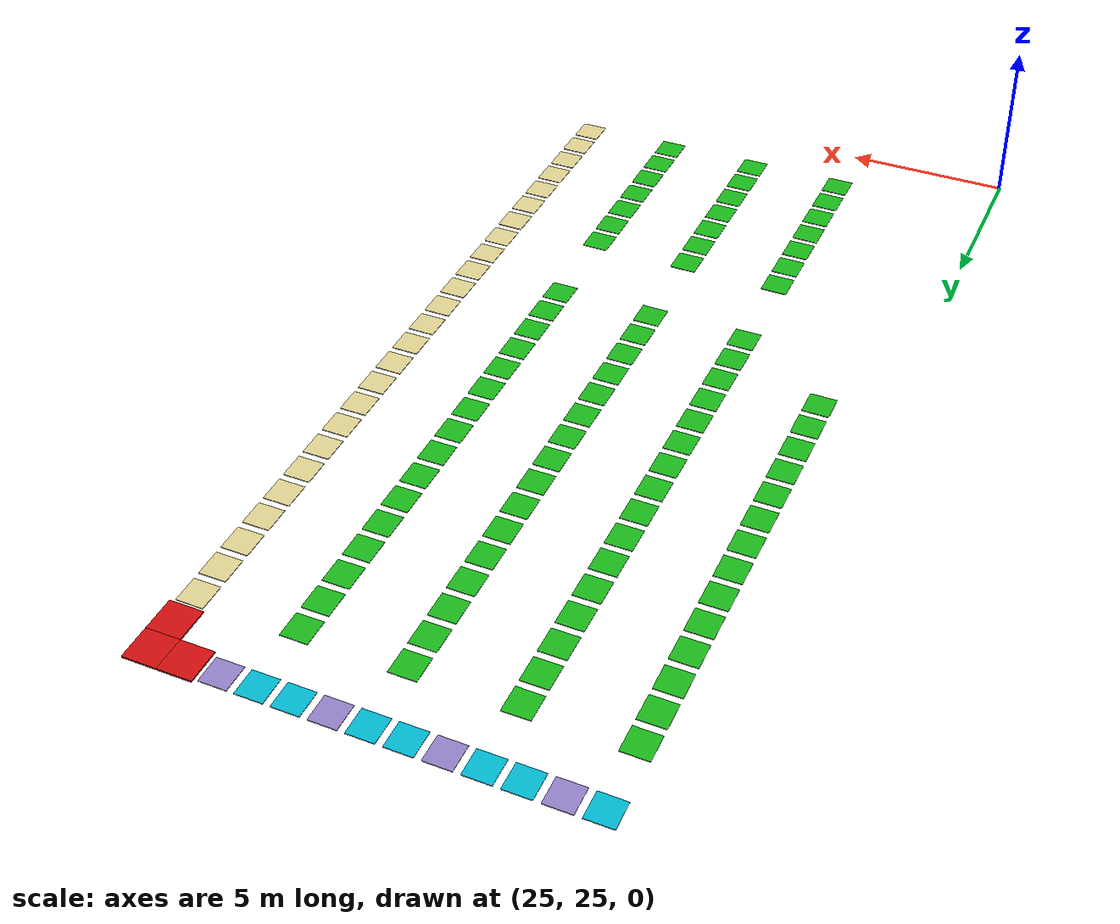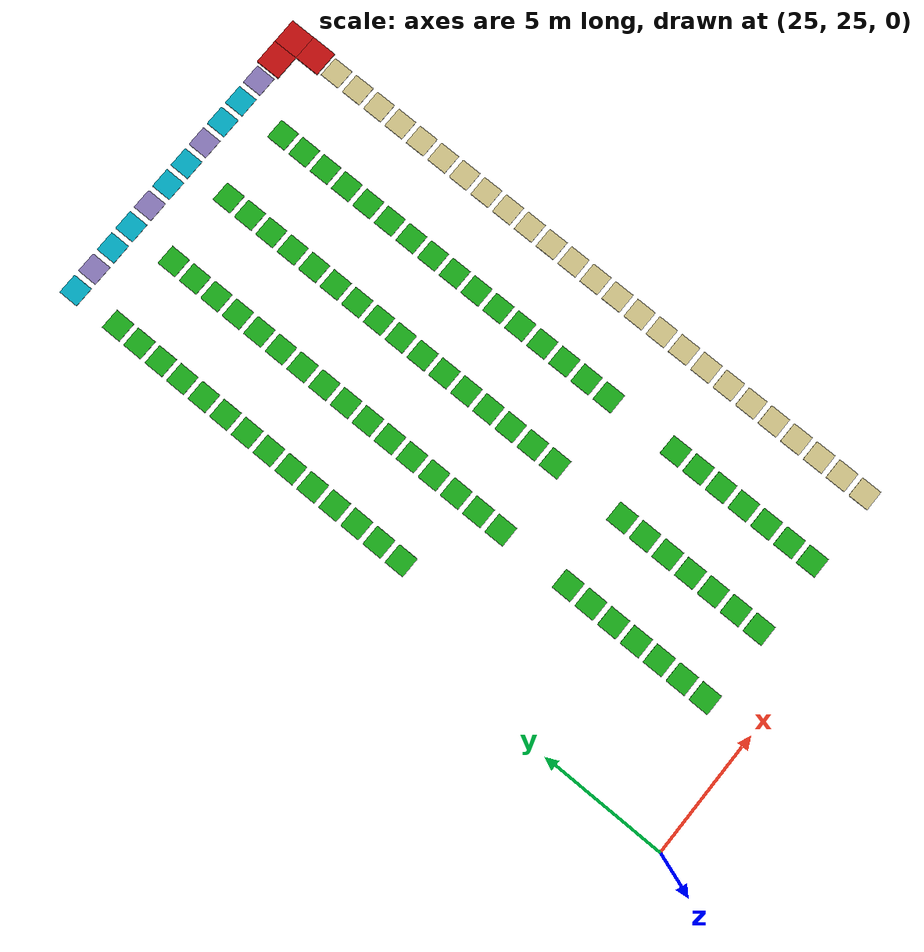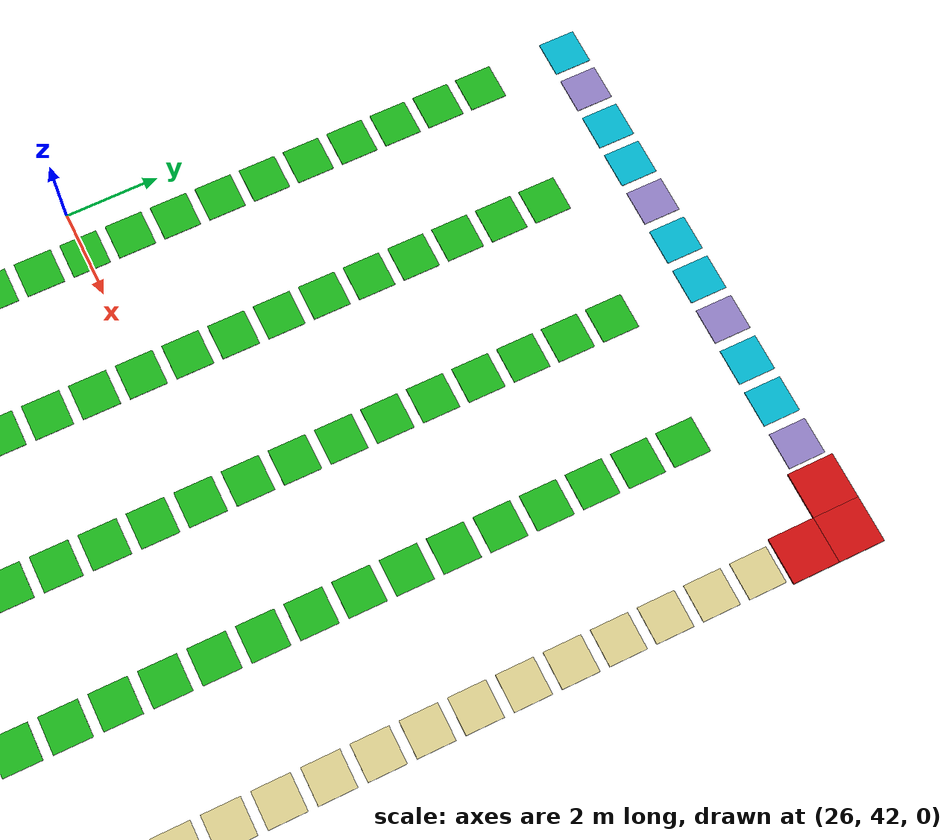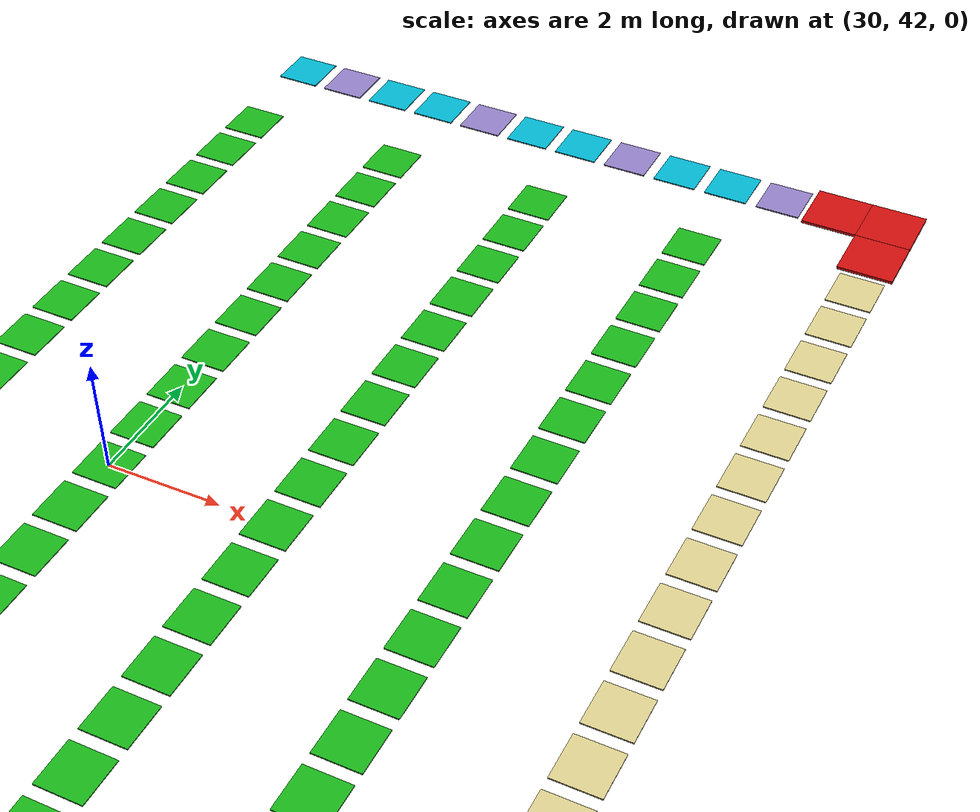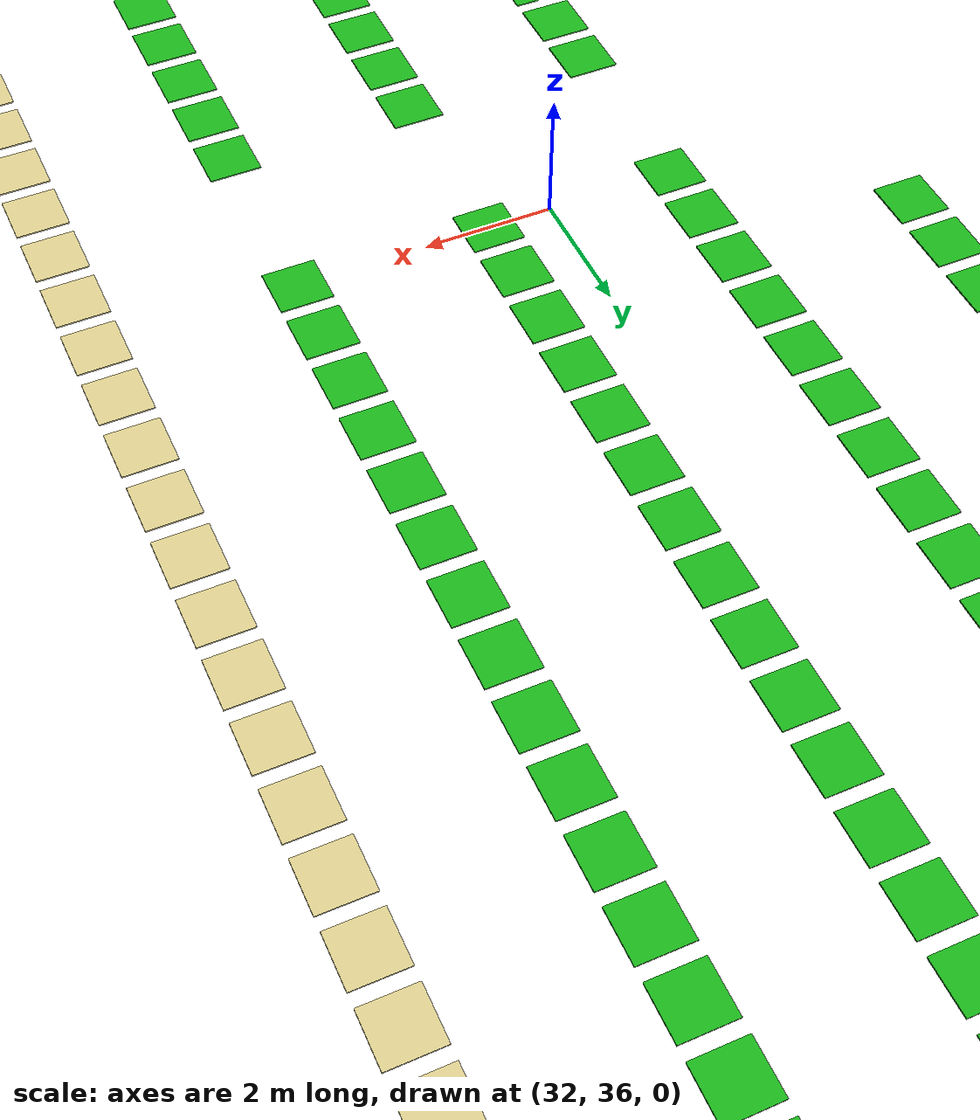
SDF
<sdf version="1.10">
 <world name="warehouse">
  <model name="blocked_0007">
   <static>true</static>
   <pose>38.0
        53.0
        0.045
        0 0 0</pose>
   <link name="link">
    <visual name="visual">
     <geometry><box><size>1.0
                1.0
                0.05</size></box></geometry>
     <material><ambient>0.8 0.05 0.05 1</ambient><diffuse>0.8 0.05 0.05 1</diffuse></material>
    </visual>
   </link>
  </model>
  <model name="blocked_0010">
   <static>true</static>
   <pose>39.0
        52.0
        0.045
        0 0 0</pose>
   <link name="link">
    <visual name="visual">
     <geometry><box><size>1.0
                1.0
                0.05</size></box></geometry>
     <material><ambient>0.8 0.05 0.05 1</ambient><diffuse>0.8 0.05 0.05 1</diffuse></material>
    </visual>
   </link>
  </model>
  <model name="blocked_0011">
   <static>true</static>
   <pose>39.0
        53.0
        0.045
        0 0 0</pose>
   <link name="link">
    <visual name="visual">
     <geometry><box><size>1.0
                1.0
                0.05</size></box></geometry>
     <material><ambient>0.8 0.05 0.05 1</ambient><diffuse>0.8 0.05 0.05 1</diffuse></material>
    </visual>
   </link>
  </model>
  <model name="charging_018">
   <static>true</static>
   <pose>27.0
        53.0
        0.02
        0 0 0</pose>
   <link name="link">
    <visual name="visual">
     <geometry><box><size>0.8
                0.8
                0.02</size></box></geometry>
     <material><ambient>0.00 0.70 0.80 1</ambient><diffuse>0.00 0.70 0.80 1</diffuse></material>
    </visual>
   </link>
  </model>
  <model name="charge_queue_009">
   <static>true</static>
   <pose>28.0
        53.0
        0.02
        0 0 0</pose>
   <link name="link">
    <visual name="visual">
     <geometry><box><size>0.8
                0.8
                0.02</size></box></geometry>
     <material><ambient>0.56 0.49 0.76 1</ambient><diffuse>0.56 0.49 0.76 1</diffuse></material>
    </visual>
   </link>
  </model>
  <model name="charging_019">
   <static>true</static>
   <pose>29.0
        53.0
        0.02
        0 0 0</pose>
   <link name="link">
    <visual name="visual">
     <geometry><box><size>0.8
                0.8
                0.02</size></box></geometry>
     <material><ambient>0.00 0.70 0.80 1</ambient><diffuse>0.00 0.70 0.80 1</diffuse></material>
    </visual>
   </link>
  </model>
  <model name="charging_020">
   <static>true</static>
   <pose>30.0
        53.0
        0.02
        0 0 0</pose>
   <link name="link">
    <visual name="visual">
     <geometry><box><size>0.8
                0.8
                0.02</size></box></geometry>
     <material><ambient>0.00 0.70 0.80 1</ambient><diffuse>0.00 0.70 0.80 1</diffuse></material>
    </visual>
   </link>
  </model>
  <model name="charge_queue_010">
   <static>true</static>
   <pose>31.0
        53.0
        0.02
        0 0 0</pose>
   <link name="link">
    <visual name="visual">
     <geometry><box><size>0.8
                0.8
                0.02</size></box></geometry>
     <material><ambient>0.56 0.49 0.76 1</ambient><diffuse>0.56 0.49 0.76 1</diffuse></material>
    </visual>
   </link>
  </model>
  <model name="charging_021">
   <static>true</static>
   <pose>32.0
        53.0
        0.02
        0 0 0</pose>
   <link name="link">
    <visual name="visual">
     <geometry><box><size>0.8
                0.8
                0.02</size></box></geometry>
     <material><ambient>0.00 0.70 0.80 1</ambient><diffuse>0.00 0.70 0.80 1</diffuse></material>
    </visual>
   </link>
  </model>
  <model name="charging_022">
   <static>true</static>
   <pose>33.0
        53.0
        0.02
        0 0 0</pose>
   <link name="link">
    <visual name="visual">
     <geometry><box><size>0.8
                0.8
                0.02</size></box></geometry>
     <material><ambient>0.00 0.70 0.80 1</ambient><diffuse>0.00 0.70 0.80 1</diffuse></material>
    </visual>
   </link>
  </model>
  <model name="charge_queue_011">
   <static>true</static>
   <pose>34.0
        53.0
        0.02
        0 0 0</pose>
   <link name="link">
    <visual name="visual">
     <geometry><box><size>0.8
                0.8
                0.02</size></box></geometry>
     <material><ambient>0.56 0.49 0.76 1</ambient><diffuse>0.56 0.49 0.76 1</diffuse></material>
    </visual>
   </link>
  </model>
  <model name="charging_023">
   <static>true</static>
   <pose>35.0
        53.0
        0.02
        0 0 0</pose>
   <link name="link">
    <visual name="visual">
     <geometry><box><size>0.8
                0.8
                0.02</size></box></geometry>
     <material><ambient>0.00 0.70 0.80 1</ambient><diffuse>0.00 0.70 0.80 1</diffuse></material>
    </visual>
   </link>
  </model>
  <model name="charging_024">
   <static>true</static>
   <pose>36.0
        53.0
        0.02
        0 0 0</pose>
   <link name="link">
    <visual name="visual">
     <geometry><box><size>0.8
                0.8
                0.02</size></box></geometry>
     <material><ambient>0.00 0.70 0.80 1</ambient><diffuse>0.00 0.70 0.80 1</diffuse></material>
    </visual>
   </link>
  </model>
  <model name="charge_queue_012">
   <static>true</static>
   <pose>37.0
        53.0
        0.02
        0 0 0</pose>
   <link name="link">
    <visual name="visual">
     <geometry><box><size>0.8
                0.8
                0.02</size></box></geometry>
     <material><ambient>0.56 0.49 0.76 1</ambient><diffuse>0.56 0.49 0.76 1</diffuse></material>
    </visual>
   </link>
  </model>
  <model name="shelf_009">
   <static>true</static>
   <pose>27.0
        51.0
        0.02
        0 0 0</pose>
   <link name="link">
    <visual name="visual">
     <geometry><box><size>0.8
                0.8
                0.02</size></box></geometry>
     <material><ambient>0.10 0.70 0.10 1</ambient><diffuse>0.10 0.70 0.10 1</diffuse></material>
    </visual>
   </link>
  </model>
  <model name="shelf_010">
   <static>true</static>
   <pose>30.0
        51.0
        0.02
        0 0 0</pose>
   <link name="link">
    <visual name="visual">
     <geometry><box><size>0.8
                0.8
                0.02</size></box></geometry>
     <material><ambient>0.10 0.70 0.10 1</ambient><diffuse>0.10 0.70 0.10 1</diffuse></material>
    </visual>
   </link>
  </model>
  <model name="shelf_011">
   <static>true</static>
   <pose>33.0
        51.0
        0.02
        0 0 0</pose>
   <link name="link">
    <visual name="visual">
     <geometry><box><size>0.8
                0.8
                0.02</size></box></geometry>
     <material><ambient>0.10 0.70 0.10 1</ambient><diffuse>0.10 0.70 0.10 1</diffuse></material>
    </visual>
   </link>
  </model>
  <model name="shelf_012">
   <static>true</static>
   <pose>36.0
        51.0
        0.02
        0 0 0</pose>
   <link name="link">
    <visual name="visual">
     <geometry><box><size>0.8
                0.8
                0.02</size></box></geometry>
     <material><ambient>0.10 0.70 0.10 1</ambient><diffuse>0.10 0.70 0.10 1</diffuse></material>
    </visual>
   </link>
  </model>
  <model name="staging_002">
   <static>true</static>
   <pose>39.0
        51.0
        0.02
        0 0 0</pose>
   <link name="link">
    <visual name="visual">
     <geometry><box><size>0.8
                0.8
                0.02</size></box></geometry>
     <material><ambient>0.85 0.80 0.55 1</ambient><diffuse>0.85 0.80 0.55 1</diffuse></material>
    </visual>
   </link>
  </model>
  <model name="shelf_021">
   <static>true</static>
   <pose>27.0
        50.0
        0.02
        0 0 0</pose>
   <link name="link">
    <visual name="visual">
     <geometry><box><size>0.8
                0.8
                0.02</size></box></geometry>
     <material><ambient>0.10 0.70 0.10 1</ambient><diffuse>0.10 0.70 0.10 1</diffuse></material>
    </visual>
   </link>
  </model>
  <model name="shelf_022">
   <static>true</static>
   <pose>30.0
        50.0
        0.02
        0 0 0</pose>
   <link name="link">
    <visual name="visual">
     <geometry><box><size>0.8
                0.8
                0.02</size></box></geometry>
     <material><ambient>0.10 0.70 0.10 1</ambient><diffuse>0.10 0.70 0.10 1</diffuse></material>
    </visual>
   </link>
  </model>
  <model name="shelf_023">
   <static>true</static>
   <pose>33.0
        50.0
        0.02
        0 0 0</pose>
   <link name="link">
    <visual name="visual">
     <geometry><box><size>0.8
                0.8
                0.02</size></box></geometry>
     <material><ambient>0.10 0.70 0.10 1</ambient><diffuse>0.10 0.70 0.10 1</diffuse></material>
    </visual>
   </link>
  </model>
  <model name="shelf_024">
   <static>true</static>
   <pose>36.0
        50.0
        0.02
        0 0 0</pose>
   <link name="link">
    <visual name="visual">
     <geometry><box><size>0.8
                0.8
                0.02</size></box></geometry>
     <material><ambient>0.10 0.70 0.10 1</ambient><diffuse>0.10 0.70 0.10 1</diffuse></material>
    </visual>
   </link>
  </model>
  <model name="staging_004">
   <static>true</static>
   <pose>39.0
        50.0
        0.02
        0 0 0</pose>
   <link name="link">
    <visual name="visual">
     <geometry><box><size>0.8
                0.8
                0.02</size></box></geometry>
     <material><ambient>0.85 0.80 0.55 1</ambient><diffuse>0.85 0.80 0.55 1</diffuse></material>
    </visual>
   </link>
  </model>
  <model name="shelf_033">
   <static>true</static>
   <pose>27.0
        49.0
        0.02
        0 0 0</pose>
   <link name="link">
    <visual name="visual">
     <geometry><box><size>0.8
                0.8
                0.02</size></box></geometry>
     <material><ambient>0.10 0.70 0.10 1</ambient><diffuse>0.10 0.70 0.10 1</diffuse></material>
    </visual>
   </link>
  </model>
  <model name="shelf_034">
   <static>true</static>
   <pose>30.0
        49.0
        0.02
        0 0 0</pose>
   <link name="link">
    <visual name="visual">
     <geometry><box><size>0.8
                0.8
                0.02</size></box></geometry>
     <material><ambient>0.10 0.70 0.10 1</ambient><diffuse>0.10 0.70 0.10 1</diffuse></material>
    </visual>
   </link>
  </model>
  <model name="shelf_035">
   <static>true</static>
   <pose>33.0
        49.0
        0.02
        0 0 0</pose>
   <link name="link">
    <visual name="visual">
     <geometry><box><size>0.8
                0.8
                0.02</size></box></geometry>
     <material><ambient>0.10 0.70 0.10 1</ambient><diffuse>0.10 0.70 0.10 1</diffuse></material>
    </visual>
   </link>
  </model>
  <model name="shelf_036">
   <static>true</static>
   <pose>36.0
        49.0
        0.02
        0 0 0</pose>
   <link name="link">
    <visual name="visual">
     <geometry><box><size>0.8
                0.8
                0.02</size></box></geometry>
     <material><ambient>0.10 0.70 0.10 1</ambient><diffuse>0.10 0.70 0.10 1</diffuse></material>
    </visual>
   </link>
  </model>
  <model name="staging_006">
   <static>true</static>
   <pose>39.0
        49.0
        0.02
        0 0 0</pose>
   <link name="link">
    <visual name="visual">
     <geometry><box><size>0.8
                0.8
                0.02</size></box></geometry>
     <material><ambient>0.85 0.80 0.55 1</ambient><diffuse>0.85 0.80 0.55 1</diffuse></material>
    </visual>
   </link>
  </model>
  <model name="shelf_045">
   <static>true</static>
   <pose>27.0
        48.0
        0.02
        0 0 0</pose>
   <link name="link">
    <visual name="visual">
     <geometry><box><size>0.8
                0.8
                0.02</size></box></geometry>
     <material><ambient>0.10 0.70 0.10 1</ambient><diffuse>0.10 0.70 0.10 1</diffuse></material>
    </visual>
   </link>
  </model>
  <model name="shelf_046">
   <static>true</static>
   <pose>30.0
        48.0
        0.02
        0 0 0</pose>
   <link name="link">
    <visual name="visual">
     <geometry><box><size>0.8
                0.8
                0.02</size></box></geometry>
     <material><ambient>0.10 0.70 0.10 1</ambient><diffuse>0.10 0.70 0.10 1</diffuse></material>
    </visual>
   </link>
  </model>
  <model name="shelf_047">
   <static>true</static>
   <pose>33.0
        48.0
        0.02
        0 0 0</pose>
   <link name="link">
    <visual name="visual">
     <geometry><box><size>0.8
                0.8
                0.02</size></box></geometry>
     <material><ambient>0.10 0.70 0.10 1</ambient><diffuse>0.10 0.70 0.10 1</diffuse></material>
    </visual>
   </link>
  </model>
  <model name="shelf_048">
   <static>true</static>
   <pose>36.0
        48.0
        0.02
        0 0 0</pose>
   <link name="link">
    <visual name="visual">
     <geometry><box><size>0.8
                0.8
                0.02</size></box></geometry>
     <material><ambient>0.10 0.70 0.10 1</ambient><diffuse>0.10 0.70 0.10 1</diffuse></material>
    </visual>
   </link>
  </model>
  <model name="staging_008">
   <static>true</static>
   <pose>39.0
        48.0
        0.02
        0 0 0</pose>
   <link name="link">
    <visual name="visual">
     <geometry><box><size>0.8
                0.8
                0.02</size></box></geometry>
     <material><ambient>0.85 0.80 0.55 1</ambient><diffuse>0.85 0.80 0.55 1</diffuse></material>
    </visual>
   </link>
  </model>
  <model name="shelf_057">
   <static>true</static>
   <pose>27.0
        47.0
        0.02
        0 0 0</pose>
   <link name="link">
    <visual name="visual">
     <geometry><box><size>0.8
                0.8
                0.02</size></box></geometry>
     <material><ambient>0.10 0.70 0.10 1</ambient><diffuse>0.10 0.70 0.10 1</diffuse></material>
    </visual>
   </link>
  </model>
  <model name="shelf_058">
   <static>true</static>
   <pose>30.0
        47.0
        0.02
        0 0 0</pose>
   <link name="link">
    <visual name="visual">
     <geometry><box><size>0.8
                0.8
                0.02</size></box></geometry>
     <material><ambient>0.10 0.70 0.10 1</ambient><diffuse>0.10 0.70 0.10 1</diffuse></material>
    </visual>
   </link>
  </model>
  <model name="shelf_059">
   <static>true</static>
   <pose>33.0
        47.0
        0.02
        0 0 0</pose>
   <link name="link">
    <visual name="visual">
     <geometry><box><size>0.8
                0.8
                0.02</size></box></geometry>
     <material><ambient>0.10 0.70 0.10 1</ambient><diffuse>0.10 0.70 0.10 1</diffuse></material>
    </visual>
   </link>
  </model>
  <model name="shelf_060">
   <static>true</static>
   <pose>36.0
        47.0
        0.02
        0 0 0</pose>
   <link name="link">
    <visual name="visual">
     <geometry><box><size>0.8
                0.8
                0.02</size></box></geometry>
     <material><ambient>0.10 0.70 0.10 1</ambient><diffuse>0.10 0.70 0.10 1</diffuse></material>
    </visual>
   </link>
  </model>
  <model name="staging_010">
   <static>true</static>
   <pose>39.0
        47.0
        0.02
        0 0 0</pose>
   <link name="link">
    <visual name="visual">
     <geometry><box><size>0.8
                0.8
                0.02</size></box></geometry>
     <material><ambient>0.85 0.80 0.55 1</ambient><diffuse>0.85 0.80 0.55 1</diffuse></material>
    </visual>
   </link>
  </model>
  <model name="shelf_069">
   <static>true</static>
   <pose>27.0
        46.0
        0.02
        0 0 0</pose>
   <link name="link">
    <visual name="visual">
     <geometry><box><size>0.8
                0.8
                0.02</size></box></geometry>
     <material><ambient>0.10 0.70 0.10 1</ambient><diffuse>0.10 0.70 0.10 1</diffuse></material>
    </visual>
   </link>
  </model>
  <model name="shelf_070">
   <static>true</static>
   <pose>30.0
        46.0
        0.02
        0 0 0</pose>
   <link name="link">
    <visual name="visual">
     <geometry><box><size>0.8
                0.8
                0.02</size></box></geometry>
     <material><ambient>0.10 0.70 0.10 1</ambient><diffuse>0.10 0.70 0.10 1</diffuse></material>
    </visual>
   </link>
  </model>
  <model name="shelf_071">
   <static>true</static>
   <pose>33.0
        46.0
        0.02
        0 0 0</pose>
   <link name="link">
    <visual name="visual">
     <geometry><box><size>0.8
                0.8
                0.02</size></box></geometry>
     <material><ambient>0.10 0.70 0.10 1</ambient><diffuse>0.10 0.70 0.10 1</diffuse></material>
    </visual>
   </link>
  </model>
  <model name="shelf_072">
   <static>true</static>
   <pose>36.0
        46.0
        0.02
        0 0 0</pose>
   <link name="link">
    <visual name="visual">
     <geometry><box><size>0.8
                0.8
                0.02</size></box></geometry>
     <material><ambient>0.10 0.70 0.10 1</ambient><diffuse>0.10 0.70 0.10 1</diffuse></material>
    </visual>
   </link>
  </model>
  <model name="staging_012">
   <static>true</static>
   <pose>39.0
        46.0
        0.02
        0 0 0</pose>
   <link name="link">
    <visual name="visual">
     <geometry><box><size>0.8
                0.8
                0.02</size></box></geometry>
     <material><ambient>0.85 0.80 0.55 1</ambient><diffuse>0.85 0.80 0.55 1</diffuse></material>
    </visual>
   </link>
  </model>
  <model name="shelf_081">
   <static>true</static>
   <pose>27.0
        45.0
        0.02
        0 0 0</pose>
   <link name="link">
    <visual name="visual">
     <geometry><box><size>0.8
                0.8
                0.02</size></box></geometry>
     <material><ambient>0.10 0.70 0.10 1</ambient><diffuse>0.10 0.70 0.10 1</diffuse></material>
    </visual>
   </link>
  </model>
  <model name="shelf_082">
   <static>true</static>
   <pose>30.0
        45.0
        0.02
        0 0 0</pose>
   <link name="link">
    <visual name="visual">
     <geometry><box><size>0.8
                0.8
                0.02</size></box></geometry>
     <material><ambient>0.10 0.70 0.10 1</ambient><diffuse>0.10 0.70 0.10 1</diffuse></material>
    </visual>
   </link>
  </model>
  <model name="shelf_083">
   <static>true</static>
   <pose>33.0
        45.0
        0.02
        0 0 0</pose>
   <link name="link">
    <visual name="visual">
     <geometry><box><size>0.8
                0.8
                0.02</size></box></geometry>
     <material><ambient>0.10 0.70 0.10 1</ambient><diffuse>0.10 0.70 0.10 1</diffuse></material>
    </visual>
   </link>
  </model>
  <model name="shelf_084">
   <static>true</static>
   <pose>36.0
        45.0
        0.02
        0 0 0</pose>
   <link name="link">
    <visual name="visual">
     <geometry><box><size>0.8
                0.8
                0.02</size></box></geometry>
     <material><ambient>0.10 0.70 0.10 1</ambient><diffuse>0.10 0.70 0.10 1</diffuse></material>
    </visual>
   </link>
  </model>
  <model name="staging_014">
   <static>true</static>
   <pose>39.0
        45.0
        0.02
        0 0 0</pose>
   <link name="link">
    <visual name="visual">
     <geometry><box><size>0.8
                0.8
                0.02</size></box></geometry>
     <material><ambient>0.85 0.80 0.55 1</ambient><diffuse>0.85 0.80 0.55 1</diffuse></material>
    </visual>
   </link>
  </model>
  <model name="shelf_093">
   <static>true</static>
   <pose>27.0
        44.0
        0.02
        0 0 0</pose>
   <link name="link">
    <visual name="visual">
     <geometry><box><size>0.8
                0.8
                0.02</size></box></geometry>
     <material><ambient>0.10 0.70 0.10 1</ambient><diffuse>0.10 0.70 0.10 1</diffuse></material>
    </visual>
   </link>
  </model>
  <model name="shelf_094">
   <static>true</static>
   <pose>30.0
        44.0
        0.02
        0 0 0</pose>
   <link name="link">
    <visual name="visual">
     <geometry><box><size>0.8
                0.8
                0.02</size></box></geometry>
     <material><ambient>0.10 0.70 0.10 1</ambient><diffuse>0.10 0.70 0.10 1</diffuse></material>
    </visual>
   </link>
  </model>
  <model name="shelf_095">
   <static>true</static>
   <pose>33.0
        44.0
        0.02
        0 0 0</pose>
   <link name="link">
    <visual name="visual">
     <geometry><box><size>0.8
                0.8
                0.02</size></box></geometry>
     <material><ambient>0.10 0.70 0.10 1</ambient><diffuse>0.10 0.70 0.10 1</diffuse></material>
    </visual>
   </link>
  </model>
  <model name="shelf_096">
   <static>true</static>
   <pose>36.0
        44.0
        0.02
        0 0 0</pose>
   <link name="link">
    <visual name="visual">
     <geometry><box><size>0.8
                0.8
                0.02</size></box></geometry>
     <material><ambient>0.10 0.70 0.10 1</ambient><diffuse>0.10 0.70 0.10 1</diffuse></material>
    </visual>
   </link>
  </model>
  <model name="staging_016">
   <static>true</static>
   <pose>39.0
        44.0
        0.02
        0 0 0</pose>
   <link name="link">
    <visual name="visual">
     <geometry><box><size>0.8
                0.8
                0.02</size></box></geometry>
     <material><ambient>0.85 0.80 0.55 1</ambient><diffuse>0.85 0.80 0.55 1</diffuse></material>
    </visual>
   </link>
  </model>
  <model name="shelf_105">
   <static>true</static>
   <pose>27.0
        43.0
        0.02
        0 0 0</pose>
   <link name="link">
    <visual name="visual">
     <geometry><box><size>0.8
                0.8
                0.02</size></box></geometry>
     <material><ambient>0.10 0.70 0.10 1</ambient><diffuse>0.10 0.70 0.10 1</diffuse></material>
    </visual>
   </link>
  </model>
  <model name="shelf_106">
   <static>true</static>
   <pose>30.0
        43.0
        0.02
        0 0 0</pose>
   <link name="link">
    <visual name="visual">
     <geometry><box><size>0.8
                0.8
                0.02</size></box></geometry>
     <material><ambient>0.10 0.70 0.10 1</ambient><diffuse>0.10 0.70 0.10 1</diffuse></material>
    </visual>
   </link>
  </model>
  <model name="shelf_107">
   <static>true</static>
   <pose>33.0
        43.0
        0.02
        0 0 0</pose>
   <link name="link">
    <visual name="visual">
     <geometry><box><size>0.8
                0.8
                0.02</size></box></geometry>
     <material><ambient>0.10 0.70 0.10 1</ambient><diffuse>0.10 0.70 0.10 1</diffuse></material>
    </visual>
   </link>
  </model>
  <model name="shelf_108">
   <static>true</static>
   <pose>36.0
        43.0
        0.02
        0 0 0</pose>
   <link name="link">
    <visual name="visual">
     <geometry><box><size>0.8
                0.8
                0.02</size></box></geometry>
     <material><ambient>0.10 0.70 0.10 1</ambient><diffuse>0.10 0.70 0.10 1</diffuse></material>
    </visual>
   </link>
  </model>
  <model name="staging_018">
   <static>true</static>
   <pose>39.0
        43.0
        0.02
        0 0 0</pose>
   <link name="link">
    <visual name="visual">
     <geometry><box><size>0.8
                0.8
                0.02</size></box></geometry>
     <material><ambient>0.85 0.80 0.55 1</ambient><diffuse>0.85 0.80 0.55 1</diffuse></material>
    </visual>
   </link>
  </model>
  <model name="shelf_117">
   <static>true</static>
   <pose>27.0
        42.0
        0.02
        0 0 0</pose>
   <link name="link">
    <visual name="visual">
     <geometry><box><size>0.8
                0.8
                0.02</size></box></geometry>
     <material><ambient>0.10 0.70 0.10 1</ambient><diffuse>0.10 0.70 0.10 1</diffuse></material>
    </visual>
   </link>
  </model>
  <model name="shelf_118">
   <static>true</static>
   <pose>30.0
        42.0
        0.02
        0 0 0</pose>
   <link name="link">
    <visual name="visual">
     <geometry><box><size>0.8
                0.8
                0.02</size></box></geometry>
     <material><ambient>0.10 0.70 0.10 1</ambient><diffuse>0.10 0.70 0.10 1</diffuse></material>
    </visual>
   </link>
  </model>
  <model name="shelf_119">
   <static>true</static>
   <pose>33.0
        42.0
        0.02
        0 0 0</pose>
   <link name="link">
    <visual name="visual">
     <geometry><box><size>0.8
                0.8
                0.02</size></box></geometry>
     <material><ambient>0.10 0.70 0.10 1</ambient><diffuse>0.10 0.70 0.10 1</diffuse></material>
    </visual>
   </link>
  </model>
  <model name="shelf_120">
   <static>true</static>
   <pose>36.0
        42.0
        0.02
        0 0 0</pose>
   <link name="link">
    <visual name="visual">
     <geometry><box><size>0.8
                0.8
                0.02</size></box></geometry>
     <material><ambient>0.10 0.70 0.10 1</ambient><diffuse>0.10 0.70 0.10 1</diffuse></material>
    </visual>
   </link>
  </model>
  <model name="staging_020">
   <static>true</static>
   <pose>39.0
        42.0
        0.02
        0 0 0</pose>
   <link name="link">
    <visual name="visual">
     <geometry><box><size>0.8
                0.8
                0.02</size></box></geometry>
     <material><ambient>0.85 0.80 0.55 1</ambient><diffuse>0.85 0.80 0.55 1</diffuse></material>
    </visual>
   </link>
  </model>
  <model name="shelf_129">
   <static>true</static>
   <pose>27.0
        41.0
        0.02
        0 0 0</pose>
   <link name="link">
    <visual name="visual">
     <geometry><box><size>0.8
                0.8
                0.02</size></box></geometry>
     <material><ambient>0.10 0.70 0.10 1</ambient><diffuse>0.10 0.70 0.10 1</diffuse></material>
    </visual>
   </link>
  </model>
  <model name="shelf_130">
   <static>true</static>
   <pose>30.0
        41.0
        0.02
        0 0 0</pose>
   <link name="link">
    <visual name="visual">
     <geometry><box><size>0.8
                0.8
                0.02</size></box></geometry>
     <material><ambient>0.10 0.70 0.10 1</ambient><diffuse>0.10 0.70 0.10 1</diffuse></material>
    </visual>
   </link>
  </model>
  <model name="shelf_131">
   <static>true</static>
   <pose>33.0
        41.0
        0.02
        0 0 0</pose>
   <link name="link">
    <visual name="visual">
     <geometry><box><size>0.8
                0.8
                0.02</size></box></geometry>
     <material><ambient>0.10 0.70 0.10 1</ambient><diffuse>0.10 0.70 0.10 1</diffuse></material>
    </visual>
   </link>
  </model>
  <model name="shelf_132">
   <static>true</static>
   <pose>36.0
        41.0
        0.02
        0 0 0</pose>
   <link name="link">
    <visual name="visual">
     <geometry><box><size>0.8
                0.8
                0.02</size></box></geometry>
     <material><ambient>0.10 0.70 0.10 1</ambient><diffuse>0.10 0.70 0.10 1</diffuse></material>
    </visual>
   </link>
  </model>
  <model name="staging_022">
   <static>true</static>
   <pose>39.0
        41.0
        0.02
        0 0 0</pose>
   <link name="link">
    <visual name="visual">
     <geometry><box><size>0.8
                0.8
                0.02</size></box></geometry>
     <material><ambient>0.85 0.80 0.55 1</ambient><diffuse>0.85 0.80 0.55 1</diffuse></material>
    </visual>
   </link>
  </model>
  <model name="shelf_141">
   <static>true</static>
   <pose>27.0
        40.0
        0.02
        0 0 0</pose>
   <link name="link">
    <visual name="visual">
     <geometry><box><size>0.8
                0.8
                0.02</size></box></geometry>
     <material><ambient>0.10 0.70 0.10 1</ambient><diffuse>0.10 0.70 0.10 1</diffuse></material>
    </visual>
   </link>
  </model>
  <model name="shelf_142">
   <static>true</static>
   <pose>30.0
        40.0
        0.02
        0 0 0</pose>
   <link name="link">
    <visual name="visual">
     <geometry><box><size>0.8
                0.8
                0.02</size></box></geometry>
     <material><ambient>0.10 0.70 0.10 1</ambient><diffuse>0.10 0.70 0.10 1</diffuse></material>
    </visual>
   </link>
  </model>
  <model name="shelf_143">
   <static>true</static>
   <pose>33.0
        40.0
        0.02
        0 0 0</pose>
   <link name="link">
    <visual name="visual">
     <geometry><box><size>0.8
                0.8
                0.02</size></box></geometry>
     <material><ambient>0.10 0.70 0.10 1</ambient><diffuse>0.10 0.70 0.10 1</diffuse></material>
    </visual>
   </link>
  </model>
  <model name="shelf_144">
   <static>true</static>
   <pose>36.0
        40.0
        0.02
        0 0 0</pose>
   <link name="link">
    <visual name="visual">
     <geometry><box><size>0.8
                0.8
                0.02</size></box></geometry>
     <material><ambient>0.10 0.70 0.10 1</ambient><diffuse>0.10 0.70 0.10 1</diffuse></material>
    </visual>
   </link>
  </model>
  <model name="staging_024">
   <static>true</static>
   <pose>39.0
        40.0
        0.02
        0 0 0</pose>
   <link name="link">
    <visual name="visual">
     <geometry><box><size>0.8
                0.8
                0.02</size></box></geometry>
     <material><ambient>0.85 0.80 0.55 1</ambient><diffuse>0.85 0.80 0.55 1</diffuse></material>
    </visual>
   </link>
  </model>
  <model name="shelf_153">
   <static>true</static>
   <pose>27.0
        39.0
        0.02
        0 0 0</pose>
   <link name="link">
    <visual name="visual">
     <geometry><box><size>0.8
                0.8
                0.02</size></box></geometry>
     <material><ambient>0.10 0.70 0.10 1</ambient><diffuse>0.10 0.70 0.10 1</diffuse></material>
    </visual>
   </link>
  </model>
  <model name="shelf_154">
   <static>true</static>
   <pose>30.0
        39.0
        0.02
        0 0 0</pose>
   <link name="link">
    <visual name="visual">
     <geometry><box><size>0.8
                0.8
                0.02</size></box></geometry>
     <material><ambient>0.10 0.70 0.10 1</ambient><diffuse>0.10 0.70 0.10 1</diffuse></material>
    </visual>
   </link>
  </model>
  <model name="shelf_155">
   <static>true</static>
   <pose>33.0
        39.0
        0.02
        0 0 0</pose>
   <link name="link">
    <visual name="visual">
     <geometry><box><size>0.8
                0.8
                0.02</size></box></geometry>
     <material><ambient>0.10 0.70 0.10 1</ambient><diffuse>0.10 0.70 0.10 1</diffuse></material>
    </visual>
   </link>
  </model>
  <model name="shelf_156">
   <static>true</static>
   <pose>36.0
        39.0
        0.02
        0 0 0</pose>
   <link name="link">
    <visual name="visual">
     <geometry><box><size>0.8
                0.8
                0.02</size></box></geometry>
     <material><ambient>0.10 0.70 0.10 1</ambient><diffuse>0.10 0.70 0.10 1</diffuse></material>
    </visual>
   </link>
  </model>
  <model name="staging_026">
   <static>true</static>
   <pose>39.0
        39.0
        0.02
        0 0 0</pose>
   <link name="link">
    <visual name="visual">
     <geometry><box><size>0.8
                0.8
                0.02</size></box></geometry>
     <material><ambient>0.85 0.80 0.55 1</ambient><diffuse>0.85 0.80 0.55 1</diffuse></material>
    </visual>
   </link>
  </model>
  <model name="shelf_165">
   <static>true</static>
   <pose>27.0
        38.0
        0.02
        0 0 0</pose>
   <link name="link">
    <visual name="visual">
     <geometry><box><size>0.8
                0.8
                0.02</size></box></geometry>
     <material><ambient>0.10 0.70 0.10 1</ambient><diffuse>0.10 0.70 0.10 1</diffuse></material>
    </visual>
   </link>
  </model>
  <model name="shelf_166">
   <static>true</static>
   <pose>30.0
        38.0
        0.02
        0 0 0</pose>
   <link name="link">
    <visual name="visual">
     <geometry><box><size>0.8
                0.8
                0.02</size></box></geometry>
     <material><ambient>0.10 0.70 0.10 1</ambient><diffuse>0.10 0.70 0.10 1</diffuse></material>
    </visual>
   </link>
  </model>
  <model name="shelf_167">
   <static>true</static>
   <pose>33.0
        38.0
        0.02
        0 0 0</pose>
   <link name="link">
    <visual name="visual">
     <geometry><box><size>0.8
                0.8
                0.02</size></box></geometry>
     <material><ambient>0.10 0.70 0.10 1</ambient><diffuse>0.10 0.70 0.10 1</diffuse></material>
    </visual>
   </link>
  </model>
  <model name="shelf_168">
   <static>true</static>
   <pose>36.0
        38.0
        0.02
        0 0 0</pose>
   <link name="link">
    <visual name="visual">
     <geometry><box><size>0.8
                0.8
                0.02</size></box></geometry>
     <material><ambient>0.10 0.70 0.10 1</ambient><diffuse>0.10 0.70 0.10 1</diffuse></material>
    </visual>
   </link>
  </model>
  <model name="staging_028">
   <static>true</static>
   <pose>39.0
        38.0
        0.02
        0 0 0</pose>
   <link name="link">
    <visual name="visual">
     <geometry><box><size>0.8
                0.8
                0.02</size></box></geometry>
     <material><ambient>0.85 0.80 0.55 1</ambient><diffuse>0.85 0.80 0.55 1</diffuse></material>
    </visual>
   </link>
  </model>
  <model name="shelf_178">
   <static>true</static>
   <pose>30.0
        37.0
        0.02
        0 0 0</pose>
   <link name="link">
    <visual name="visual">
     <geometry><box><size>0.8
                0.8
                0.02</size></box></geometry>
     <material><ambient>0.10 0.70 0.10 1</ambient><diffuse>0.10 0.70 0.10 1</diffuse></material>
    </visual>
   </link>
  </model>
  <model name="shelf_179">
   <static>true</static>
   <pose>33.0
        37.0
        0.02
        0 0 0</pose>
   <link name="link">
    <visual name="visual">
     <geometry><box><size>0.8
                0.8
                0.02</size></box></geometry>
     <material><ambient>0.10 0.70 0.10 1</ambient><diffuse>0.10 0.70 0.10 1</diffuse></material>
    </visual>
   </link>
  </model>
  <model name="shelf_180">
   <static>true</static>
   <pose>36.0
        37.0
        0.02
        0 0 0</pose>
   <link name="link">
    <visual name="visual">
     <geometry><box><size>0.8
                0.8
                0.02</size></box></geometry>
     <material><ambient>0.10 0.70 0.10 1</ambient><diffuse>0.10 0.70 0.10 1</diffuse></material>
    </visual>
   </link>
  </model>
  <model name="staging_030">
   <static>true</static>
   <pose>39.0
        37.0
        0.02
        0 0 0</pose>
   <link name="link">
    <visual name="visual">
     <geometry><box><size>0.8
                0.8
                0.02</size></box></geometry>
     <material><ambient>0.85 0.80 0.55 1</ambient><diffuse>0.85 0.80 0.55 1</diffuse></material>
    </visual>
   </link>
  </model>
  <model name="shelf_190">
   <static>true</static>
   <pose>30.0
        36.0
        0.02
        0 0 0</pose>
   <link name="link">
    <visual name="visual">
     <geometry><box><size>0.8
                0.8
                0.02</size></box></geometry>
     <material><ambient>0.10 0.70 0.10 1</ambient><diffuse>0.10 0.70 0.10 1</diffuse></material>
    </visual>
   </link>
  </model>
  <model name="shelf_191">
   <static>true</static>
   <pose>33.0
        36.0
        0.02
        0 0 0</pose>
   <link name="link">
    <visual name="visual">
     <geometry><box><size>0.8
                0.8
                0.02</size></box></geometry>
     <material><ambient>0.10 0.70 0.10 1</ambient><diffuse>0.10 0.70 0.10 1</diffuse></material>
    </visual>
   </link>
  </model>
  <model name="shelf_192">
   <static>true</static>
   <pose>36.0
        36.0
        0.02
        0 0 0</pose>
   <link name="link">
    <visual name="visual">
     <geometry><box><size>0.8
                0.8
                0.02</size></box></geometry>
     <material><ambient>0.10 0.70 0.10 1</ambient><diffuse>0.10 0.70 0.10 1</diffuse></material>
    </visual>
   </link>
  </model>
  <model name="staging_032">
   <static>true</static>
   <pose>39.0
        36.0
        0.02
        0 0 0</pose>
   <link name="link">
    <visual name="visual">
     <geometry><box><size>0.8
                0.8
                0.02</size></box></geometry>
     <material><ambient>0.85 0.80 0.55 1</ambient><diffuse>0.85 0.80 0.55 1</diffuse></material>
    </visual>
   </link>
  </model>
  <model name="staging_034">
   <static>true</static>
   <pose>39.0
        35.0
        0.02
        0 0 0</pose>
   <link name="link">
    <visual name="visual">
     <geometry><box><size>0.8
                0.8
                0.02</size></box></geometry>
     <material><ambient>0.85 0.80 0.55 1</ambient><diffuse>0.85 0.80 0.55 1</diffuse></material>
    </visual>
   </link>
  </model>
  <model name="staging_036">
   <static>true</static>
   <pose>39.0
        34.0
        0.02
        0 0 0</pose>
   <link name="link">
    <visual name="visual">
     <geometry><box><size>0.8
                0.8
                0.02</size></box></geometry>
     <material><ambient>0.85 0.80 0.55 1</ambient><diffuse>0.85 0.80 0.55 1</diffuse></material>
    </visual>
   </link>
  </model>
  <model name="shelf_202">
   <static>true</static>
   <pose>30.0
        33.0
        0.02
        0 0 0</pose>
   <link name="link">
    <visual name="visual">
     <geometry><box><size>0.8
                0.8
                0.02</size></box></geometry>
     <material><ambient>0.10 0.70 0.10 1</ambient><diffuse>0.10 0.70 0.10 1</diffuse></material>
    </visual>
   </link>
  </model>
  <model name="shelf_203">
   <static>true</static>
   <pose>33.0
        33.0
        0.02
        0 0 0</pose>
   <link name="link">
    <visual name="visual">
     <geometry><box><size>0.8
                0.8
                0.02</size></box></geometry>
     <material><ambient>0.10 0.70 0.10 1</ambient><diffuse>0.10 0.70 0.10 1</diffuse></material>
    </visual>
   </link>
  </model>
  <model name="shelf_204">
   <static>true</static>
   <pose>36.0
        33.0
        0.02
        0 0 0</pose>
   <link name="link">
    <visual name="visual">
     <geometry><box><size>0.8
                0.8
                0.02</size></box></geometry>
     <material><ambient>0.10 0.70 0.10 1</ambient><diffuse>0.10 0.70 0.10 1</diffuse></material>
    </visual>
   </link>
  </model>
  <model name="staging_038">
   <static>true</static>
   <pose>39.0
        33.0
        0.02
        0 0 0</pose>
   <link name="link">
    <visual name="visual">
     <geometry><box><size>0.8
                0.8
                0.02</size></box></geometry>
     <material><ambient>0.85 0.80 0.55 1</ambient><diffuse>0.85 0.80 0.55 1</diffuse></material>
    </visual>
   </link>
  </model>
  <model name="shelf_214">
   <static>true</static>
   <pose>30.0
        32.0
        0.02
        0 0 0</pose>
   <link name="link">
    <visual name="visual">
     <geometry><box><size>0.8
                0.8
                0.02</size></box></geometry>
     <material><ambient>0.10 0.70 0.10 1</ambient><diffuse>0.10 0.70 0.10 1</diffuse></material>
    </visual>
   </link>
  </model>
  <model name="shelf_215">
   <static>true</static>
   <pose>33.0
        32.0
        0.02
        0 0 0</pose>
   <link name="link">
    <visual name="visual">
     <geometry><box><size>0.8
                0.8
                0.02</size></box></geometry>
     <material><ambient>0.10 0.70 0.10 1</ambient><diffuse>0.10 0.70 0.10 1</diffuse></material>
    </visual>
   </link>
  </model>
  <model name="shelf_216">
   <static>true</static>
   <pose>36.0
        32.0
        0.02
        0 0 0</pose>
   <link name="link">
    <visual name="visual">
     <geometry><box><size>0.8
                0.8
                0.02</size></box></geometry>
     <material><ambient>0.10 0.70 0.10 1</ambient><diffuse>0.10 0.70 0.10 1</diffuse></material>
    </visual>
   </link>
  </model>
  <model name="staging_040">
   <static>true</static>
   <pose>39.0
        32.0
        0.02
        0 0 0</pose>
   <link name="link">
    <visual name="visual">
     <geometry><box><size>0.8
                0.8
                0.02</size></box></geometry>
     <material><ambient>0.85 0.80 0.55 1</ambient><diffuse>0.85 0.80 0.55 1</diffuse></material>
    </visual>
   </link>
  </model>
  <model name="shelf_226">
   <static>true</static>
   <pose>30.0
        31.0
        0.02
        0 0 0</pose>
   <link name="link">
    <visual name="visual">
     <geometry><box><size>0.8
                0.8
                0.02</size></box></geometry>
     <material><ambient>0.10 0.70 0.10 1</ambient><diffuse>0.10 0.70 0.10 1</diffuse></material>
    </visual>
   </link>
  </model>
  <model name="shelf_227">
   <static>true</static>
   <pose>33.0
        31.0
        0.02
        0 0 0</pose>
   <link name="link">
    <visual name="visual">
     <geometry><box><size>0.8
                0.8
                0.02</size></box></geometry>
     <material><ambient>0.10 0.70 0.10 1</ambient><diffuse>0.10 0.70 0.10 1</diffuse></material>
    </visual>
   </link>
  </model>
  <model name="shelf_228">
   <static>true</static>
   <pose>36.0
        31.0
        0.02
        0 0 0</pose>
   <link name="link">
    <visual name="visual">
     <geometry><box><size>0.8
                0.8
                0.02</size></box></geometry>
     <material><ambient>0.10 0.70 0.10 1</ambient><diffuse>0.10 0.70 0.10 1</diffuse></material>
    </visual>
   </link>
  </model>
  <model name="staging_042">
   <static>true</static>
   <pose>39.0
        31.0
        0.02
        0 0 0</pose>
   <link name="link">
    <visual name="visual">
     <geometry><box><size>0.8
                0.8
                0.02</size></box></geometry>
     <material><ambient>0.85 0.80 0.55 1</ambient><diffuse>0.85 0.80 0.55 1</diffuse></material>
    </visual>
   </link>
  </model>
  <model name="shelf_238">
   <static>true</static>
   <pose>30.0
        30.0
        0.02
        0 0 0</pose>
   <link name="link">
    <visual name="visual">
     <geometry><box><size>0.8
                0.8
                0.02</size></box></geometry>
     <material><ambient>0.10 0.70 0.10 1</ambient><diffuse>0.10 0.70 0.10 1</diffuse></material>
    </visual>
   </link>
  </model>
  <model name="shelf_239">
   <static>true</static>
   <pose>33.0
        30.0
        0.02
        0 0 0</pose>
   <link name="link">
    <visual name="visual">
     <geometry><box><size>0.8
                0.8
                0.02</size></box></geometry>
     <material><ambient>0.10 0.70 0.10 1</ambient><diffuse>0.10 0.70 0.10 1</diffuse></material>
    </visual>
   </link>
  </model>
  <model name="shelf_240">
   <static>true</static>
   <pose>36.0
        30.0
        0.02
        0 0 0</pose>
   <link name="link">
    <visual name="visual">
     <geometry><box><size>0.8
                0.8
                0.02</size></box></geometry>
     <material><ambient>0.10 0.70 0.10 1</ambient><diffuse>0.10 0.70 0.10 1</diffuse></material>
    </visual>
   </link>
  </model>
  <model name="staging_044">
   <static>true</static>
   <pose>39.0
        30.0
        0.02
        0 0 0</pose>
   <link name="link">
    <visual name="visual">
     <geometry><box><size>0.8
                0.8
                0.02</size></box></geometry>
     <material><ambient>0.85 0.80 0.55 1</ambient><diffuse>0.85 0.80 0.55 1</diffuse></material>
    </visual>
   </link>
  </model>
  <model name="shelf_250">
   <static>true</static>
   <pose>30.0
        29.0
        0.02
        0 0 0</pose>
   <link name="link">
    <visual name="visual">
     <geometry><box><size>0.8
                0.8
                0.02</size></box></geometry>
     <material><ambient>0.10 0.70 0.10 1</ambient><diffuse>0.10 0.70 0.10 1</diffuse></material>
    </visual>
   </link>
  </model>
  <model name="shelf_251">
   <static>true</static>
   <pose>33.0
        29.0
        0.02
        0 0 0</pose>
   <link name="link">
    <visual name="visual">
     <geometry><box><size>0.8
                0.8
                0.02</size></box></geometry>
     <material><ambient>0.10 0.70 0.10 1</ambient><diffuse>0.10 0.70 0.10 1</diffuse></material>
    </visual>
   </link>
  </model>
  <model name="shelf_252">
   <static>true</static>
   <pose>36.0
        29.0
        0.02
        0 0 0</pose>
   <link name="link">
    <visual name="visual">
     <geometry><box><size>0.8
                0.8
                0.02</size></box></geometry>
     <material><ambient>0.10 0.70 0.10 1</ambient><diffuse>0.10 0.70 0.10 1</diffuse></material>
    </visual>
   </link>
  </model>
  <model name="staging_046">
   <static>true</static>
   <pose>39.0
        29.0
        0.02
        0 0 0</pose>
   <link name="link">
    <visual name="visual">
     <geometry><box><size>0.8
                0.8
                0.02</size></box></geometry>
     <material><ambient>0.85 0.80 0.55 1</ambient><diffuse>0.85 0.80 0.55 1</diffuse></material>
    </visual>
   </link>
  </model>
  <model name="shelf_262">
   <static>true</static>
   <pose>30.0
        28.0
        0.02
        0 0 0</pose>
   <link name="link">
    <visual name="visual">
     <geometry><box><size>0.8
                0.8
                0.02</size></box></geometry>
     <material><ambient>0.10 0.70 0.10 1</ambient><diffuse>0.10 0.70 0.10 1</diffuse></material>
    </visual>
   </link>
  </model>
  <model name="shelf_263">
   <static>true</static>
   <pose>33.0
        28.0
        0.02
        0 0 0</pose>
   <link name="link">
    <visual name="visual">
     <geometry><box><size>0.8
                0.8
                0.02</size></box></geometry>
     <material><ambient>0.10 0.70 0.10 1</ambient><diffuse>0.10 0.70 0.10 1</diffuse></material>
    </visual>
   </link>
  </model>
  <model name="shelf_264">
   <static>true</static>
   <pose>36.0
        28.0
        0.02
        0 0 0</pose>
   <link name="link">
    <visual name="visual">
     <geometry><box><size>0.8
                0.8
                0.02</size></box></geometry>
     <material><ambient>0.10 0.70 0.10 1</ambient><diffuse>0.10 0.70 0.10 1</diffuse></material>
    </visual>
   </link>
  </model>
  <model name="staging_048">
   <static>true</static>
   <pose>39.0
        28.0
        0.02
        0 0 0</pose>
   <link name="link">
    <visual name="visual">
     <geometry><box><size>0.8
                0.8
                0.02</size></box></geometry>
     <material><ambient>0.85 0.80 0.55 1</ambient><diffuse>0.85 0.80 0.55 1</diffuse></material>
    </visual>
   </link>
  </model>
  <model name="shelf_274">
   <static>true</static>
   <pose>30.0
        27.0
        0.02
        0 0 0</pose>
   <link name="link">
    <visual name="visual">
     <geometry><box><size>0.8
                0.8
                0.02</size></box></geometry>
     <material><ambient>0.10 0.70 0.10 1</ambient><diffuse>0.10 0.70 0.10 1</diffuse></material>
    </visual>
   </link>
  </model>
  <model name="shelf_275">
   <static>true</static>
   <pose>33.0
        27.0
        0.02
        0 0 0</pose>
   <link name="link">
    <visual name="visual">
     <geometry><box><size>0.8
                0.8
                0.02</size></box></geometry>
     <material><ambient>0.10 0.70 0.10 1</ambient><diffuse>0.10 0.70 0.10 1</diffuse></material>
    </visual>
   </link>
  </model>
  <model name="shelf_276">
   <static>true</static>
   <pose>36.0
        27.0
        0.02
        0 0 0</pose>
   <link name="link">
    <visual name="visual">
     <geometry><box><size>0.8
                0.8
                0.02</size></box></geometry>
     <material><ambient>0.10 0.70 0.10 1</ambient><diffuse>0.10 0.70 0.10 1</diffuse></material>
    </visual>
   </link>
  </model>
  <model name="staging_050">
   <static>true</static>
   <pose>39.0
        27.0
        0.02
        0 0 0</pose>
   <link name="link">
    <visual name="visual">
     <geometry><box><size>0.8
                0.8
                0.02</size></box></geometry>
     <material><ambient>0.85 0.80 0.55 1</ambient><diffuse>0.85 0.80 0.55 1</diffuse></material>
    </visual>
   </link>
  </model>
 </world>
</sdf>
